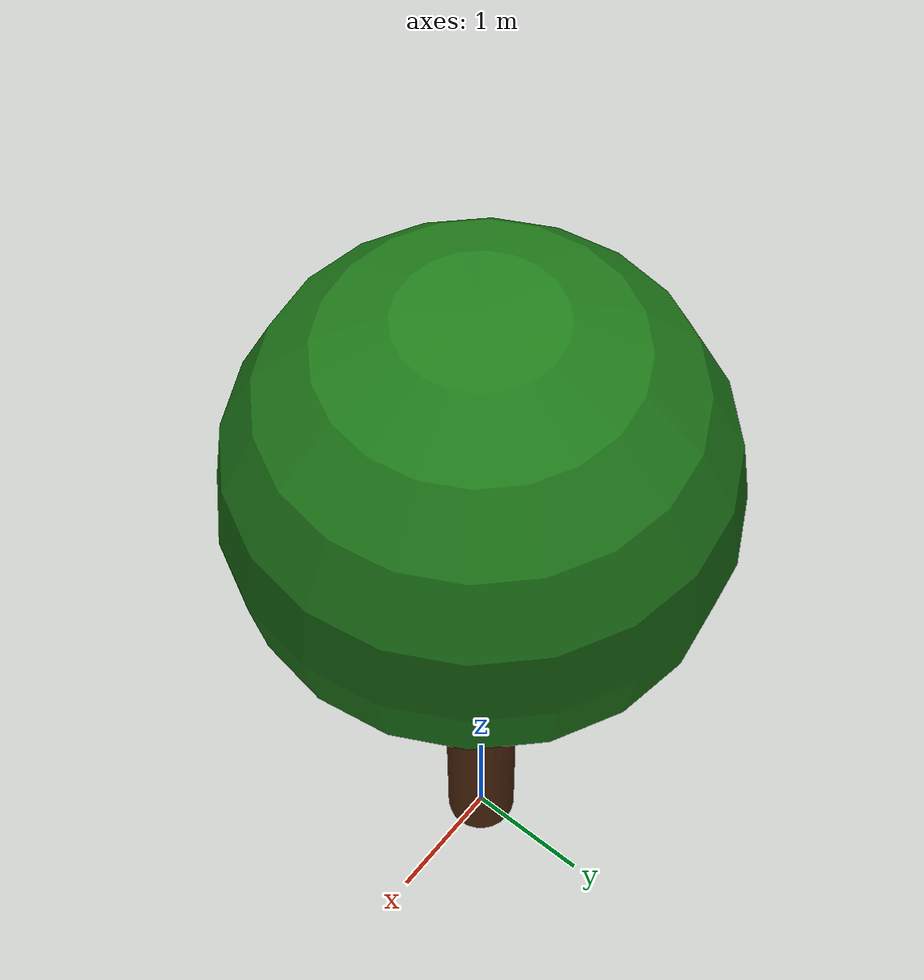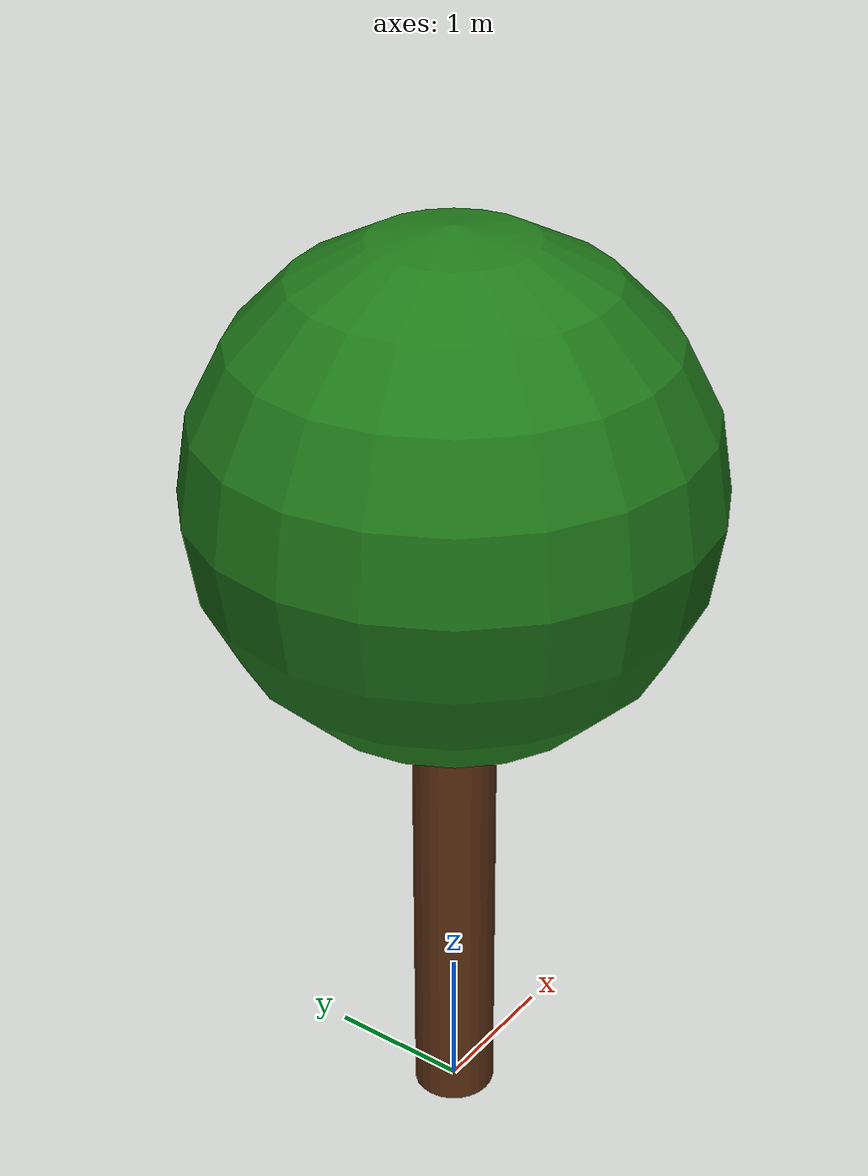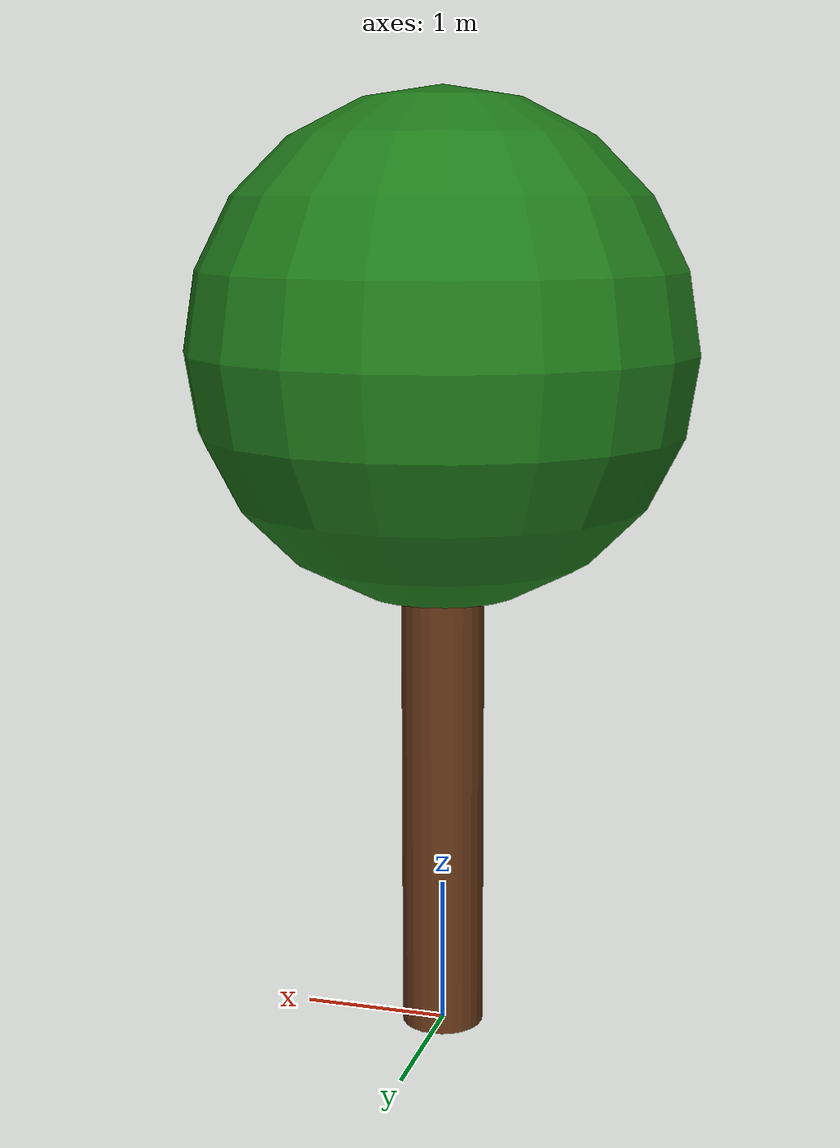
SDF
<?xml version="1.0"?>
<sdf version="1.9">
  <model name="astra_oak_tree">
    <static>true</static>
    <link name="tree">
      <collision name="trunk_collision">
        <pose>0 0 2 0 0 0</pose>
        <geometry><cylinder><radius>0.28</radius><length>4</length></cylinder></geometry>
      </collision>
      <visual name="trunk_visual">
        <pose>0 0 2 0 0 0</pose>
        <geometry><cylinder><radius>0.28</radius><length>4</length></cylinder></geometry>
        <material><ambient>0.28 0.13 0.05 1</ambient><diffuse>0.38 0.20 0.08 1</diffuse></material>
      </visual>
      <collision name="crown_collision">
        <pose>0 0 4.7 0 0 0</pose>
        <geometry><sphere><radius>1.7</radius></sphere></geometry>
      </collision>
      <visual name="crown_visual">
        <pose>0 0 4.7 0 0 0</pose>
        <geometry><sphere><radius>1.7</radius></sphere></geometry>
        <material><ambient>0.08 0.30 0.07 1</ambient><diffuse>0.12 0.48 0.10 1</diffuse></material>
      </visual>
    </link>
  </model>
</sdf>
